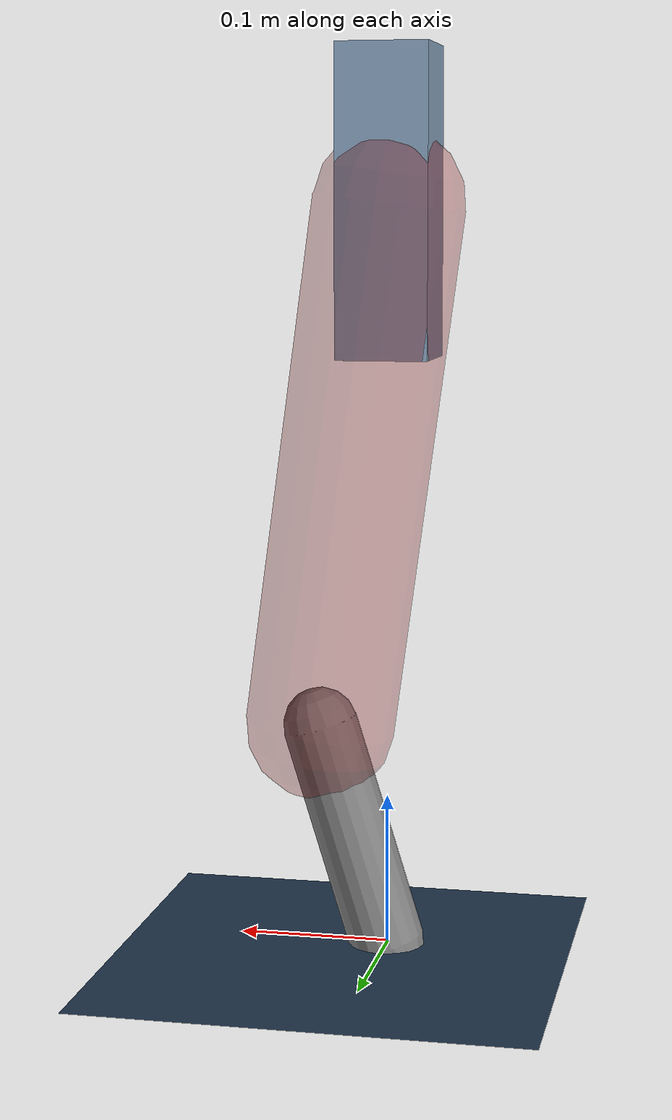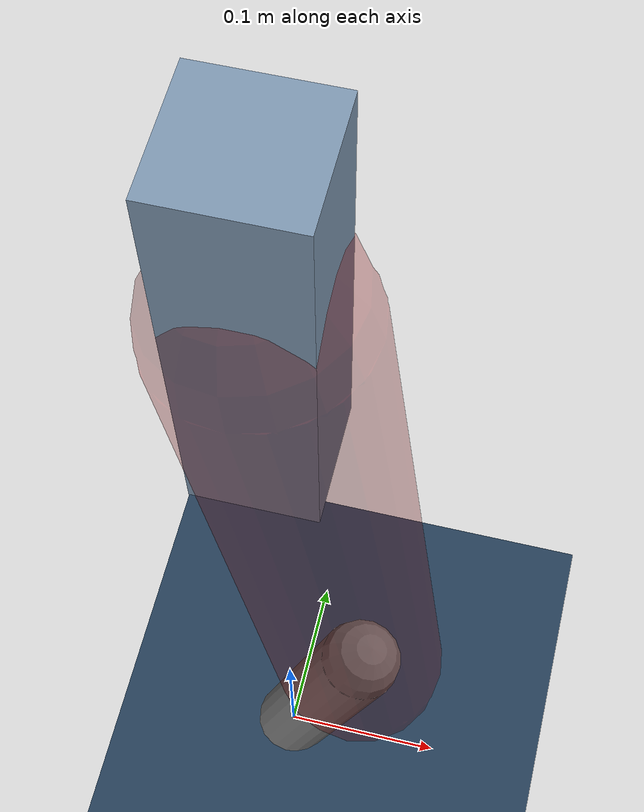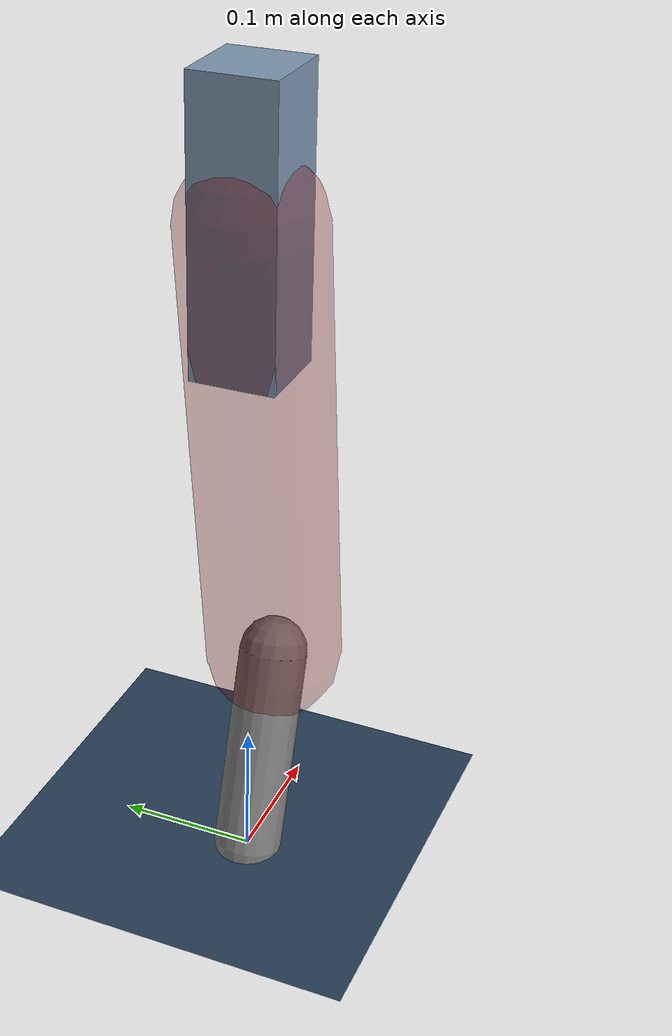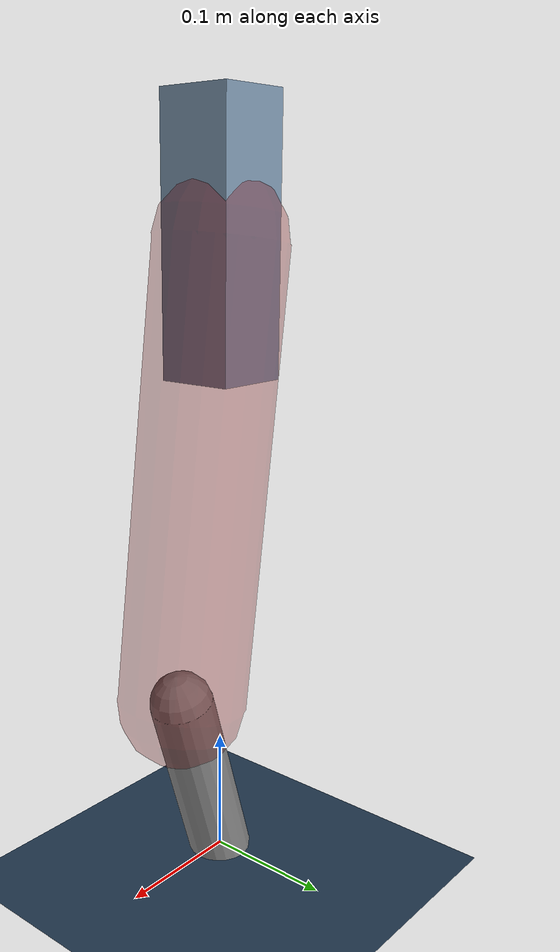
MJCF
<mujoco model="Hopper2D">
	<compiler inertiafromgeom="true" angle="radian" />
	<option timestep="0.001" integrator="implicit" cone="elliptic" solver="Newton" tolerance="1e-10" />

	<default>
		<geom contype="1" conaffinity="1" condim="3" friction="2 0.005 0.0001" solref="0.005 1" />
		<joint limited="true" damping="0.1" />
	</default>

	<asset>
		<texture name="skybox" type="skybox" builtin="gradient" rgb1=".4 .6 .8" rgb2="0 0 0" width="800" height="800" />
		<texture name="grid" type="2d" builtin="checker" rgb1=".1 .2 .3" rgb2=".2 .3 .4" width="300" height="300" mark="edge" markrgb=".2 .3 .4" />
		<material name="ground" texture="grid" texrepeat="1 1" texuniform="true" reflectance="0.1" />
		<material name="leg" rgba="0.5 0.6 0.7 1" />
	</asset>

	<worldbody>

		<geom name="floor" type="plane" size="5 5 0.25" material="ground" />

		<light directional="false" diffuse="0.8 0.8 0.8" specular="0.3 0.3 0.3" pos="0 0 2" dir="0 0 -1" />
		<light mode="targetbodycom" target="base" directional="false" diffuse="0.8 0.8 0.8" specular="0.3 0.3 0.3" pos="0 0 2" dir="0 0 -1" />

		<camera name="fixed" pos="0 -2 1" xyaxes="1 0 0 0 0 1" />
		<camera name="tracking" mode="trackcom" pos="0 -3 1" />

		<body name="root" pos="0 0 0.4921369204470927">
			<joint name="slide_x" type="slide" axis="1 0 0" range="-100 100" />
			<joint name="slide_z" type="slide" axis="0 0 1" range="0 10" />

			<body name="base" pos="0 0 0">
				<geom name="torso" type="box" size="0.03 0.03 0.1" mass="3.257" material="leg" />

				<body name="link1" pos="0 0 0" euler="0 1.438769499185767 0">
					<joint type="hinge" axis="0 -1 0" pos="0 0 0" name="hinge1" limited="true" range="-3.14 3.14" stiffness="0" damping="0.1" />
					<geom name="thigh" type="capsule" fromto="0 0 0 0.34806166133472904 0 0" size="0.05" rgba="0.5 0 0 0.3" mass="1.1212726517372413" />

					<body name="link2" pos="0.34806166133472904 0 0" euler="0 0.43398224352815357 0">
						<joint type="hinge" axis="0 -1 0" pos="0 0 0" name="hinge2" limited="true" range="-3.14 3.14" stiffness="0" damping="0.1" />
						<geom name="shank" type="capsule" fromto="0 0 0 0.1540752591123636 0 0" size="0.025" mass="0.3613602072898909" />

					</body>
				</body>
			</body>
		</body>
	</worldbody>

	<actuator>
		<motor name="torque1" joint="hinge1" ctrlrange="-120.4767635586621 120.4767635586621" ctrllimited="true" gear="1" />
		<motor name="torque2" joint="hinge2" ctrlrange="-146.28422583018735 146.28422583018735" ctrllimited="true" gear="1" />
	</actuator>
</mujoco>
